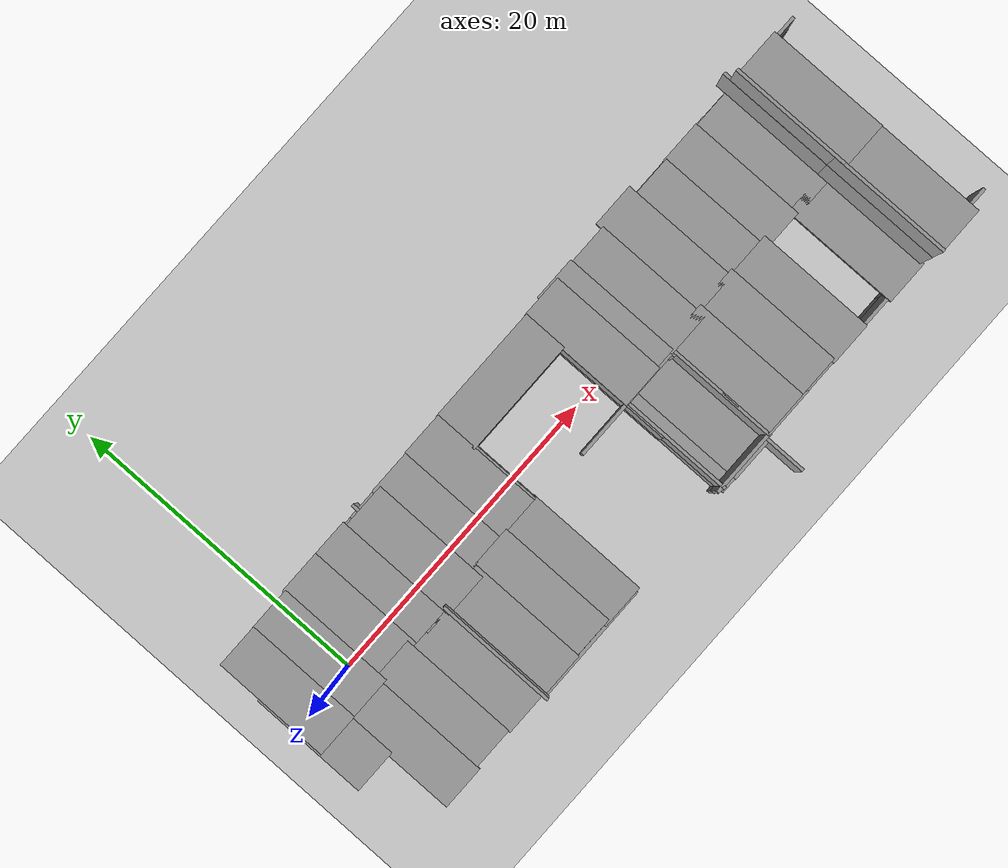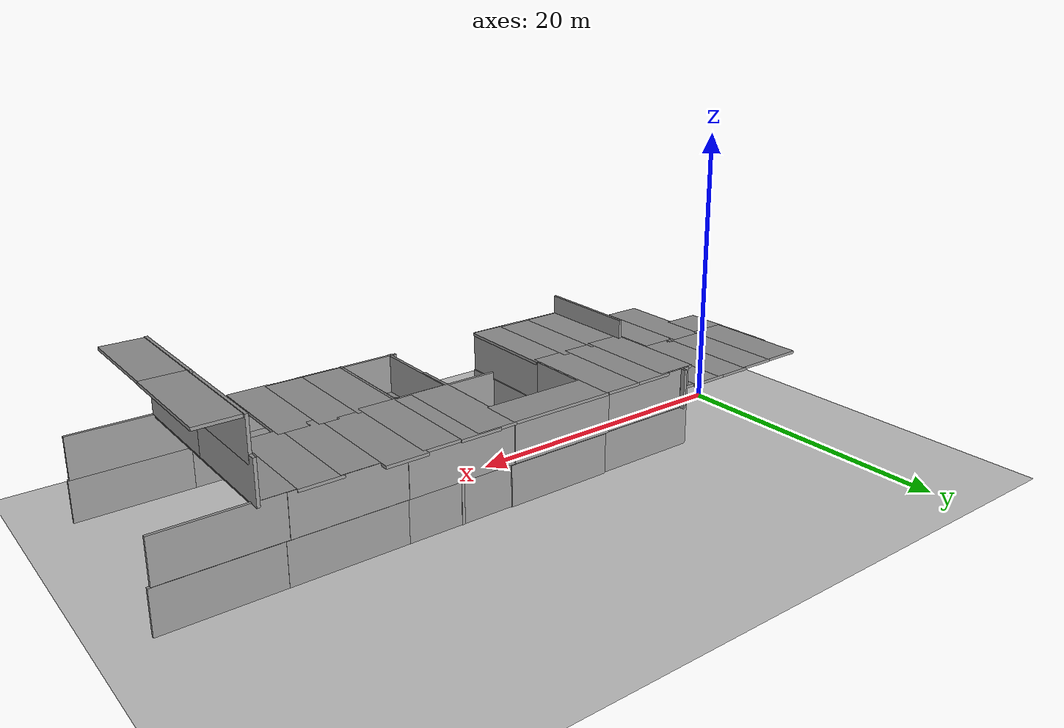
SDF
<sdf version="1.6">
 <world name="default">
  <model name="ground_plane">
   <static>1</static>
   <link name="link">
    <collision name="collision">
     <geometry><plane><normal>0 0 1</normal><size>5000 5000</size></plane></geometry>
     <surface><friction><ode><mu>100</mu><mu2>50</mu2></ode></friction></surface>
    </collision>
    <visual name="runway">
     <pose>0 0 0.005 0 -0 0</pose>
     <cast_shadows>0</cast_shadows>
     <geometry><plane><normal>0 0 1</normal><size>1829 45</size></plane></geometry>
     <material>
      <script><uri>file://media/materials/scripts/gazebo.material</uri><name>Gazebo/Runway</name></script>
     </material>
    </visual>
    <visual name="grass">
     <pose>0 0 -0.1 0 -0 0</pose>
     <cast_shadows>0</cast_shadows>
     <geometry><plane><normal>0 0 1</normal><size>5000 5000</size></plane></geometry>
     <material>
      <script><uri>file://media/materials/scripts/gazebo.material</uri><name>Gazebo/Grass</name></script>
     </material>
    </visual>
   </link>
  </model>
  <model name="grey_wall_0_clone">
   <static>1</static>
   <link name="link">
    <pose>0 0 1.4 0 -0 0</pose>
    <collision name="collision"><geometry><box><size>7.5 0.2 2.8</size></box></geometry></collision>
    <visual name="visual">
     <cast_shadows>0</cast_shadows>
     <geometry><box><size>7.5 0.2 2.8</size></box></geometry>
     <material>
      <script>
       <uri>model://grey_wall/materials/scripts</uri>
       <uri>model://grey_wall/materials/textures</uri>
       <name>vrc/grey_wall</name>
      </script>
     </material>
    </visual>
   </link>
   <pose>10.7245 5.24992 0 0 -0 0</pose>
  </model>
  <model name="grey_wall_0_clone_0">
   <static>1</static>
   <link name="link">
    <pose>0 0 1.4 0 -0 0</pose>
    <collision name="collision"><geometry><box><size>7.5 0.2 2.8</size></box></geometry></collision>
    <visual name="visual">
     <cast_shadows>0</cast_shadows>
     <geometry><box><size>7.5 0.2 2.8</size></box></geometry>
     <material>
      <script>
       <uri>model://grey_wall/materials/scripts</uri>
       <uri>model://grey_wall/materials/textures</uri>
       <name>vrc/grey_wall</name>
      </script>
     </material>
    </visual>
   </link>
   <pose>18.1379 5.35276 0 0 -0 0</pose>
  </model>
  <model name="grey_wall_0_clone_1">
   <static>1</static>
   <link name="link">
    <pose>0 0 1.4 0 -0 0</pose>
    <collision name="collision"><geometry><box><size>7.5 0.2 2.8</size></box></geometry></collision>
    <visual name="visual">
     <cast_shadows>0</cast_shadows>
     <geometry><box><size>7.5 0.2 2.8</size></box></geometry>
     <material>
      <script>
       <uri>model://grey_wall/materials/scripts</uri>
       <uri>model://grey_wall/materials/textures</uri>
       <name>vrc/grey_wall</name>
      </script>
     </material>
    </visual>
   </link>
   <pose>25.5945 5.27252 0 0 -0 0</pose>
  </model>
  <model name="grey_wall_0_clone_2">
   <static>1</static>
   <link name="link">
    <pose>0 0 1.4 0 -0 0</pose>
    <collision name="collision"><geometry><box><size>7.5 0.2 2.8</size></box></geometry></collision>
    <visual name="visual">
     <cast_shadows>0</cast_shadows>
     <geometry><box><size>7.5 0.2 2.8</size></box></geometry>
     <material>
      <script>
       <uri>model://grey_wall/materials/scripts</uri>
       <uri>model://grey_wall/materials/textures</uri>
       <name>vrc/grey_wall</name>
      </script>
     </material>
    </visual>
   </link>
   <pose>32.8671 5.27341 0 0 -0 0</pose>
  </model>
  <model name="grey_wall_0_clone_3">
   <static>1</static>
   <link name="link">
    <pose>0 0 1.4 0 -0 0</pose>
    <collision name="collision"><geometry><box><size>7.5 0.2 2.8</size></box></geometry></collision>
    <visual name="visual">
     <cast_shadows>0</cast_shadows>
     <geometry><box><size>7.5 0.2 2.8</size></box></geometry>
     <material>
      <script>
       <uri>model://grey_wall/materials/scripts</uri>
       <uri>model://grey_wall/materials/textures</uri>
       <name>vrc/grey_wall</name>
      </script>
     </material>
    </visual>
   </link>
   <pose>40.2229 5.26287 0 0 -0 0</pose>
  </model>
  <model name="grey_wall_0_clone_5">
   <static>1</static>
   <link name="link">
    <pose>0 0 1.4 0 -0 0</pose>
    <collision name="collision"><geometry><box><size>7.5 0.2 2.8</size></box></geometry></collision>
    <visual name="visual">
     <cast_shadows>0</cast_shadows>
     <geometry><box><size>7.5 0.2 2.8</size></box></geometry>
     <material>
      <script>
       <uri>model://grey_wall/materials/scripts</uri>
       <uri>model://grey_wall/materials/textures</uri>
       <name>vrc/grey_wall</name>
      </script>
     </material>
    </visual>
   </link>
   <pose>25.0989 -8.97825 0 0 -0 0</pose>
  </model>
  <model name="grey_wall_0_clone_6">
   <static>1</static>
   <link name="link">
    <pose>0 0 1.4 0 -0 0</pose>
    <collision name="collision"><geometry><box><size>7.5 0.2 2.8</size></box></geometry></collision>
    <visual name="visual">
     <cast_shadows>0</cast_shadows>
     <geometry><box><size>7.5 0.2 2.8</size></box></geometry>
     <material>
      <script>
       <uri>model://grey_wall/materials/scripts</uri>
       <uri>model://grey_wall/materials/textures</uri>
       <name>vrc/grey_wall</name>
      </script>
     </material>
    </visual>
   </link>
   <pose>32.5083 -8.96234 0 0 -0 0</pose>
  </model>
  <model name="grey_wall_0_clone_7">
   <static>1</static>
   <link name="link">
    <pose>0 0 1.4 0 -0 0</pose>
    <collision name="collision"><geometry><box><size>7.5 0.2 2.8</size></box></geometry></collision>
    <visual name="visual">
     <cast_shadows>0</cast_shadows>
     <geometry><box><size>7.5 0.2 2.8</size></box></geometry>
     <material>
      <script>
       <uri>model://grey_wall/materials/scripts</uri>
       <uri>model://grey_wall/materials/textures</uri>
       <name>vrc/grey_wall</name>
      </script>
     </material>
    </visual>
   </link>
   <pose>39.9344 -8.95946 0 0 -0 0</pose>
  </model>
  <model name="grey_wall_0_clone_10">
   <static>1</static>
   <link name="link">
    <pose>0 0 1.4 0 -0 0</pose>
    <collision name="collision"><geometry><box><size>7.5 0.2 2.8</size></box></geometry></collision>
    <visual name="visual">
     <cast_shadows>0</cast_shadows>
     <geometry><box><size>7.5 0.2 2.8</size></box></geometry>
     <material>
      <script>
       <uri>model://grey_wall/materials/scripts</uri>
       <uri>model://grey_wall/materials/textures</uri>
       <name>vrc/grey_wall</name>
      </script>
     </material>
    </visual>
   </link>
   <pose>25.0498 -8.85326 2.83061 0 -0 0</pose>
  </model>
  <model name="grey_wall_0_clone_10_clone">
   <static>1</static>
   <link name="link">
    <pose>0 0 1.4 0 -0 0</pose>
    <collision name="collision"><geometry><box><size>7.5 0.2 2.8</size></box></geometry></collision>
    <visual name="visual">
     <cast_shadows>0</cast_shadows>
     <geometry><box><size>7.5 0.2 2.8</size></box></geometry>
     <material>
      <script>
       <uri>model://grey_wall/materials/scripts</uri>
       <uri>model://grey_wall/materials/textures</uri>
       <name>vrc/grey_wall</name>
      </script>
     </material>
    </visual>
   </link>
   <pose>32.4685 -8.83738 2.83061 0 -0 0</pose>
  </model>
  <model name="grey_wall_0_clone_10_clone_clone">
   <static>1</static>
   <link name="link">
    <pose>0 0 1.4 0 -0 0</pose>
    <collision name="collision"><geometry><box><size>7.5 0.2 2.8</size></box></geometry></collision>
    <visual name="visual">
     <cast_shadows>0</cast_shadows>
     <geometry><box><size>7.5 0.2 2.8</size></box></geometry>
     <material>
      <script>
       <uri>model://grey_wall/materials/scripts</uri>
       <uri>model://grey_wall/materials/textures</uri>
       <name>vrc/grey_wall</name>
      </script>
     </material>
    </visual>
   </link>
   <pose>39.8658 -8.86209 2.83061 0 -0 0</pose>
  </model>
  <model name="grey_wall_0_clone_10_clone_clone_2">
   <static>1</static>
   <link name="link">
    <pose>0 0 1.4 0 -0 0</pose>
    <collision name="collision"><geometry><box><size>7.5 0.2 2.8</size></box></geometry></collision>
    <visual name="visual">
     <cast_shadows>0</cast_shadows>
     <geometry><box><size>7.5 0.2 2.8</size></box></geometry>
     <material>
      <script>
       <uri>model://grey_wall/materials/scripts</uri>
       <uri>model://grey_wall/materials/textures</uri>
       <name>vrc/grey_wall</name>
      </script>
     </material>
    </visual>
   </link>
   <pose>10.6982 5.25569 2.83061 0 -0 0</pose>
  </model>
  <model name="grey_wall_0_clone_10_clone_clone_3">
   <static>1</static>
   <link name="link">
    <pose>0 0 1.4 0 -0 0</pose>
    <collision name="collision"><geometry><box><size>7.5 0.2 2.8</size></box></geometry></collision>
    <visual name="visual">
     <cast_shadows>0</cast_shadows>
     <geometry><box><size>7.5 0.2 2.8</size></box></geometry>
     <material>
      <script>
       <uri>model://grey_wall/materials/scripts</uri>
       <uri>model://grey_wall/materials/textures</uri>
       <name>vrc/grey_wall</name>
      </script>
     </material>
    </visual>
   </link>
   <pose>17.8888 5.34719 2.83061 0 -0 0</pose>
  </model>
  <model name="grey_wall_0_clone_10_clone_clone_4">
   <static>1</static>
   <link name="link">
    <pose>0 0 1.4 0 -0 0</pose>
    <collision name="collision"><geometry><box><size>7.5 0.2 2.8</size></box></geometry></collision>
    <visual name="visual">
     <cast_shadows>0</cast_shadows>
     <geometry><box><size>7.5 0.2 2.8</size></box></geometry>
     <material>
      <script>
       <uri>model://grey_wall/materials/scripts</uri>
       <uri>model://grey_wall/materials/textures</uri>
       <name>vrc/grey_wall</name>
      </script>
     </material>
    </visual>
   </link>
   <pose>25.311 5.32515 2.83061 0 -0 0</pose>
  </model>
  <model name="grey_wall_0_clone_10_clone_clone_5">
   <static>1</static>
   <link name="link">
    <pose>0 0 1.4 0 -0 0</pose>
    <collision name="collision"><geometry><box><size>7.5 0.2 2.8</size></box></geometry></collision>
    <visual name="visual">
     <cast_shadows>0</cast_shadows>
     <geometry><box><size>7.5 0.2 2.8</size></box></geometry>
     <material>
      <script>
       <uri>model://grey_wall/materials/scripts</uri>
       <uri>model://grey_wall/materials/textures</uri>
       <name>vrc/grey_wall</name>
      </script>
     </material>
    </visual>
   </link>
   <pose>32.6267 5.3026 2.83061 0 -0 0</pose>
  </model>
  <model name="grey_wall_0_clone_10_clone_clone_6">
   <static>1</static>
   <link name="link">
    <pose>0 0 1.4 0 -0 0</pose>
    <collision name="collision"><geometry><box><size>7.5 0.2 2.8</size></box></geometry></collision>
    <visual name="visual">
     <cast_shadows>0</cast_shadows>
     <geometry><box><size>7.5 0.2 2.8</size></box></geometry>
     <material>
      <script>
       <uri>model://grey_wall/materials/scripts</uri>
       <uri>model://grey_wall/materials/textures</uri>
       <name>vrc/grey_wall</name>
      </script>
     </material>
    </visual>
   </link>
   <pose>40.0722 5.27757 2.83061 0 -0 0</pose>
  </model>
  <model name="grey_wall_0_clone_1_clone">
   <static>1</static>
   <link name="link">
    <pose>0 0 1.4 0 -0 0</pose>
    <collision name="collision"><geometry><box><size>7.5 0.2 2.8</size></box></geometry></collision>
    <visual name="visual">
     <cast_shadows>0</cast_shadows>
     <geometry><box><size>7.5 0.2 2.8</size></box></geometry>
     <material>
      <script>
       <uri>model://grey_wall/materials/scripts</uri>
       <uri>model://grey_wall/materials/textures</uri>
       <name>vrc/grey_wall</name>
      </script>
     </material>
    </visual>
   </link>
   <pose>14.4589 -5.28722 0 0 0 -1.5708</pose>
  </model>
  <model name="grey_wall_0_clone_10_clone_clone_3_clone">
   <static>1</static>
   <link name="link">
    <pose>0 0 1.4 0 -0 0</pose>
    <collision name="collision"><geometry><box><size>7.5 0.2 2.8</size></box></geometry></collision>
    <visual name="visual">
     <cast_shadows>0</cast_shadows>
     <geometry><box><size>7.5 0.2 2.8</size></box></geometry>
     <material>
      <script>
       <uri>model://grey_wall/materials/scripts</uri>
       <uri>model://grey_wall/materials/textures</uri>
       <name>vrc/grey_wall</name>
      </script>
     </material>
    </visual>
   </link>
   <pose>14.433 -5.27177 2.83061 0 0 -1.5708</pose>
  </model>
  <model name="grey_wall_0_clone_1_clone_clone">
   <static>1</static>
   <link name="link">
    <pose>0 0 1.4 0 -0 0</pose>
    <collision name="collision"><geometry><box><size>7.5 0.2 2.8</size></box></geometry></collision>
    <visual name="visual">
     <cast_shadows>0</cast_shadows>
     <geometry><box><size>7.5 0.2 2.8</size></box></geometry>
     <material>
      <script>
       <uri>model://grey_wall/materials/scripts</uri>
       <uri>model://grey_wall/materials/textures</uri>
       <name>vrc/grey_wall</name>
      </script>
     </material>
    </visual>
   </link>
   <pose>14.4307 1.60378 0 0 0 -1.5708</pose>
  </model>
  <model name="grey_wall_0_clone_10_clone_clone_3_clone_clone">
   <static>1</static>
   <link name="link">
    <pose>0 0 1.4 0 -0 0</pose>
    <collision name="collision"><geometry><box><size>7.5 0.2 2.8</size></box></geometry></collision>
    <visual name="visual">
     <cast_shadows>0</cast_shadows>
     <geometry><box><size>7.5 0.2 2.8</size></box></geometry>
     <material>
      <script>
       <uri>model://grey_wall/materials/scripts</uri>
       <uri>model://grey_wall/materials/textures</uri>
       <name>vrc/grey_wall</name>
      </script>
     </material>
    </visual>
   </link>
   <pose>14.3909 -0.780595 2.83061 0 0 -1.5708</pose>
  </model>
  <model name="grey_wall_0_clone_10_clone_clone_3_clone_0">
   <static>1</static>
   <link name="link">
    <pose>0 0 1.4 0 -0 0</pose>
    <collision name="collision"><geometry><box><size>7.5 0.2 2.8</size></box></geometry></collision>
    <visual name="visual">
     <cast_shadows>0</cast_shadows>
     <geometry><box><size>7.5 0.2 2.8</size></box></geometry>
     <material>
      <script>
       <uri>model://grey_wall/materials/scripts</uri>
       <uri>model://grey_wall/materials/textures</uri>
       <name>vrc/grey_wall</name>
      </script>
     </material>
    </visual>
   </link>
   <pose>18.0863 2.86625 2.83061 0 -0 0</pose>
  </model>
  <model name="grey_wall_0_clone_0_clone">
   <static>1</static>
   <link name="link">
    <pose>0 0 1.4 0 -0 0</pose>
    <collision name="collision"><geometry><box><size>7.5 0.2 2.8</size></box></geometry></collision>
    <visual name="visual">
     <cast_shadows>0</cast_shadows>
     <geometry><box><size>7.5 0.2 2.8</size></box></geometry>
     <material>
      <script>
       <uri>model://grey_wall/materials/scripts</uri>
       <uri>model://grey_wall/materials/textures</uri>
       <name>vrc/grey_wall</name>
      </script>
     </material>
    </visual>
   </link>
   <pose>18.1341 2.8231 0 0 -0 0</pose>
  </model>
  <model name="grey_wall_0_clone_10_clone_clone_3_clone_clone_clone">
   <static>1</static>
   <link name="link">
    <pose>0 0 1.4 0 -0 0</pose>
    <collision name="collision"><geometry><box><size>7.5 0.2 2.8</size></box></geometry></collision>
    <visual name="visual">
     <cast_shadows>0</cast_shadows>
     <geometry><box><size>7.5 0.2 2.8</size></box></geometry>
     <material>
      <script>
       <uri>model://grey_wall/materials/scripts</uri>
       <uri>model://grey_wall/materials/textures</uri>
       <name>vrc/grey_wall</name>
      </script>
     </material>
    </visual>
   </link>
   <pose>25.4024 1.55722 2.83061 0 0 -1.5708</pose>
  </model>
  <model name="grey_wall_0_clone_10_clone_clone_3_clone_clone_clone_0">
   <static>1</static>
   <link name="link">
    <pose>0 0 1.4 0 -0 0</pose>
    <collision name="collision"><geometry><box><size>7.5 0.2 2.8</size></box></geometry></collision>
    <visual name="visual">
     <cast_shadows>0</cast_shadows>
     <geometry><box><size>7.5 0.2 2.8</size></box></geometry>
     <material>
      <script>
       <uri>model://grey_wall/materials/scripts</uri>
       <uri>model://grey_wall/materials/textures</uri>
       <name>vrc/grey_wall</name>
      </script>
     </material>
    </visual>
   </link>
   <pose>25.5803 -2.87326 2.83061 0 0 -1.5708</pose>
  </model>
  <model name="grey_wall_0_clone_1_clone_clone_0">
   <static>1</static>
   <link name="link">
    <pose>0 0 1.4 0 -0 0</pose>
    <collision name="collision"><geometry><box><size>7.5 0.2 2.8</size></box></geometry></collision>
    <visual name="visual">
     <cast_shadows>0</cast_shadows>
     <geometry><box><size>7.5 0.2 2.8</size></box></geometry>
     <material>
      <script>
       <uri>model://grey_wall/materials/scripts</uri>
       <uri>model://grey_wall/materials/textures</uri>
       <name>vrc/grey_wall</name>
      </script>
     </material>
    </visual>
   </link>
   <pose>21.772 -0.922629 0 0 0 -1.5708</pose>
  </model>
  <model name="grey_wall_0_clone_1_clone_clone_1">
   <static>1</static>
   <link name="link">
    <pose>0 0 1.4 0 -0 0</pose>
    <collision name="collision"><geometry><box><size>7.5 0.2 2.8</size></box></geometry></collision>
    <visual name="visual">
     <cast_shadows>0</cast_shadows>
     <geometry><box><size>7.5 0.2 2.8</size></box></geometry>
     <material>
      <script>
       <uri>model://grey_wall/materials/scripts</uri>
       <uri>model://grey_wall/materials/textures</uri>
       <name>vrc/grey_wall</name>
      </script>
     </material>
    </visual>
   </link>
   <pose>21.8008 -5.49226 0 0 0 -1.5708</pose>
  </model>
  <model name="grey_wall_0_clone_10_clone_clone_3_clone_clone_clone_clone">
   <static>1</static>
   <link name="link">
    <pose>0 0 1.4 0 -0 0</pose>
    <collision name="collision"><geometry><box><size>7.5 0.2 2.8</size></box></geometry></collision>
    <visual name="visual">
     <cast_shadows>0</cast_shadows>
     <geometry><box><size>7.5 0.2 2.8</size></box></geometry>
     <material>
      <script>
       <uri>model://grey_wall/materials/scripts</uri>
       <uri>model://grey_wall/materials/textures</uri>
       <name>vrc/grey_wall</name>
      </script>
     </material>
    </visual>
   </link>
   <pose>21.6407 -0.916233 2.83061 0 0 -1.5708</pose>
  </model>
  <model name="grey_wall_0_clone_10_clone_clone_3_clone_clone_clone_clone_0">
   <static>1</static>
   <link name="link">
    <pose>0 0 1.4 0 -0 0</pose>
    <collision name="collision"><geometry><box><size>7.5 0.2 2.8</size></box></geometry></collision>
    <visual name="visual">
     <cast_shadows>0</cast_shadows>
     <geometry><box><size>7.5 0.2 2.8</size></box></geometry>
     <material>
      <script>
       <uri>model://grey_wall/materials/scripts</uri>
       <uri>model://grey_wall/materials/textures</uri>
       <name>vrc/grey_wall</name>
      </script>
     </material>
    </visual>
   </link>
   <pose>21.7402 -5.27279 2.83061 0 0 -1.5708</pose>
  </model>
  <model name="grey_wall_0_clone_1_clone_clone_0_clone">
   <static>1</static>
   <link name="link">
    <pose>0 0 1.4 0 -0 0</pose>
    <collision name="collision"><geometry><box><size>7.5 0.2 2.8</size></box></geometry></collision>
    <visual name="visual">
     <cast_shadows>0</cast_shadows>
     <geometry><box><size>7.5 0.2 2.8</size></box></geometry>
     <material>
      <script>
       <uri>model://grey_wall/materials/scripts</uri>
       <uri>model://grey_wall/materials/textures</uri>
       <name>vrc/grey_wall</name>
      </script>
     </material>
    </visual>
   </link>
   <pose>25.414 1.65261 0 0 0 -1.5708</pose>
  </model>
  <model name="grey_wall_0_clone_1_clone_clone_0_clone_0">
   <static>1</static>
   <link name="link">
    <pose>0 0 1.4 0 -0 0</pose>
    <collision name="collision"><geometry><box><size>7.5 0.2 2.8</size></box></geometry></collision>
    <visual name="visual">
     <cast_shadows>0</cast_shadows>
     <geometry><box><size>7.5 0.2 2.8</size></box></geometry>
     <material>
      <script>
       <uri>model://grey_wall/materials/scripts</uri>
       <uri>model://grey_wall/materials/textures</uri>
       <name>vrc/grey_wall</name>
      </script>
     </material>
    </visual>
   </link>
   <pose>25.6372 -8.21965 0 0 0 -1.5708</pose>
  </model>
  <model name="grey_wall_0_clone_10_clone_clone_3_clone_clone_clone_0_clone">
   <static>1</static>
   <link name="link">
    <pose>0 0 1.4 0 -0 0</pose>
    <collision name="collision"><geometry><box><size>7.5 0.2 2.8</size></box></geometry></collision>
    <visual name="visual">
     <cast_shadows>0</cast_shadows>
     <geometry><box><size>7.5 0.2 2.8</size></box></geometry>
     <material>
      <script>
       <uri>model://grey_wall/materials/scripts</uri>
       <uri>model://grey_wall/materials/textures</uri>
       <name>vrc/grey_wall</name>
      </script>
     </material>
    </visual>
   </link>
   <pose>25.562 -5.25695 2.83061 0 0 -1.5708</pose>
  </model>
  <model name="grey_wall_0_clone_10_clone_0">
   <static>1</static>
   <link name="link">
    <pose>0 0 1.4 0 -0 0</pose>
    <collision name="collision"><geometry><box><size>7.5 0.2 2.8</size></box></geometry></collision>
    <visual name="visual">
     <cast_shadows>0</cast_shadows>
     <geometry><box><size>7.5 0.2 2.8</size></box></geometry>
     <material>
      <script>
       <uri>model://grey_wall/materials/scripts</uri>
       <uri>model://grey_wall/materials/textures</uri>
       <name>vrc/grey_wall</name>
      </script>
     </material>
    </visual>
   </link>
   <pose>21.7238 -1.91976 2.83061 0 -0 0</pose>
  </model>
  <model name="grey_wall_0_clone_10_clone_0_clone">
   <static>1</static>
   <link name="link">
    <pose>0 0 1.4 0 -0 0</pose>
    <collision name="collision"><geometry><box><size>7.5 0.2 2.8</size></box></geometry></collision>
    <visual name="visual">
     <cast_shadows>0</cast_shadows>
     <geometry><box><size>7.5 0.2 2.8</size></box></geometry>
     <material>
      <script>
       <uri>model://grey_wall/materials/scripts</uri>
       <uri>model://grey_wall/materials/textures</uri>
       <name>vrc/grey_wall</name>
      </script>
     </material>
    </visual>
   </link>
   <pose>25.5163 -5.684 2.83061 1.5708 0 -1.5708</pose>
  </model>
  <model name="grey_wall_0_clone_10_clone_0_clone_clone">
   <static>1</static>
   <link name="link">
    <pose>0 0 1.4 0 -0 0</pose>
    <collision name="collision"><geometry><box><size>7.5 0.2 2.8</size></box></geometry></collision>
    <visual name="visual">
     <cast_shadows>0</cast_shadows>
     <geometry><box><size>7.5 0.2 2.8</size></box></geometry>
     <material>
      <script>
       <uri>model://grey_wall/materials/scripts</uri>
       <uri>model://grey_wall/materials/textures</uri>
       <name>vrc/grey_wall</name>
      </script>
     </material>
    </visual>
   </link>
   <pose>24.4817 -5.63211 2.8306 1.5708 0 -1.5708</pose>
  </model>
  <model name="grey_wall_0_clone_10_clone_0_clone_clone_clone">
   <static>1</static>
   <link name="link">
    <pose>0 0 1.4 0 -0 0</pose>
    <collision name="collision"><geometry><box><size>7.5 0.2 2.8</size></box></geometry></collision>
    <visual name="visual">
     <cast_shadows>0</cast_shadows>
     <geometry><box><size>7.5 0.2 2.8</size></box></geometry>
     <material>
      <script>
       <uri>model://grey_wall/materials/scripts</uri>
       <uri>model://grey_wall/materials/textures</uri>
       <name>vrc/grey_wall</name>
      </script>
     </material>
    </visual>
   </link>
   <pose>25.5834 1.89085 5.5331 1.5708 0 -1.5708</pose>
  </model>
  <model name="grey_wall_0_clone_10_clone_0_clone_clone_clone_clone">
   <static>1</static>
   <link name="link">
    <pose>0 0 1.4 0 -0 0</pose>
    <collision name="collision"><geometry><box><size>7.5 0.2 2.8</size></box></geometry></collision>
    <visual name="visual">
     <cast_shadows>0</cast_shadows>
     <geometry><box><size>7.5 0.2 2.8</size></box></geometry>
     <material>
      <script>
       <uri>model://grey_wall/materials/scripts</uri>
       <uri>model://grey_wall/materials/textures</uri>
       <name>vrc/grey_wall</name>
      </script>
     </material>
    </visual>
   </link>
   <pose>24.3486 1.77269 5.5331 1.5708 0 -1.5708</pose>
  </model>
  <model name="grey_wall_0_clone_10_clone_0_clone_clone_clone_clone_0">
   <static>1</static>
   <link name="link">
    <pose>0 0 1.4 0 -0 0</pose>
    <collision name="collision"><geometry><box><size>7.5 0.2 2.8</size></box></geometry></collision>
    <visual name="visual">
     <cast_shadows>0</cast_shadows>
     <geometry><box><size>7.5 0.2 2.8</size></box></geometry>
     <material>
      <script>
       <uri>model://grey_wall/materials/scripts</uri>
       <uri>model://grey_wall/materials/textures</uri>
       <name>vrc/grey_wall</name>
      </script>
     </material>
    </visual>
   </link>
   <pose>17.9707 2.68641 5.53311 1.5708 4e-06 3.14159</pose>
  </model>
  <model name="grey_wall_0_clone_10_clone_0_clone_clone_clone_clone_1">
   <static>1</static>
   <link name="link">
    <pose>0 0 1.4 0 -0 0</pose>
    <collision name="collision"><geometry><box><size>7.5 0.2 2.8</size></box></geometry></collision>
    <visual name="visual">
     <cast_shadows>0</cast_shadows>
     <geometry><box><size>7.5 0.2 2.8</size></box></geometry>
     <material>
      <script>
       <uri>model://grey_wall/materials/scripts</uri>
       <uri>model://grey_wall/materials/textures</uri>
       <name>vrc/grey_wall</name>
      </script>
     </material>
    </visual>
   </link>
   <pose>11.5899 1.64731 5.5331 1.5708 0 -1.5708</pose>
  </model>
  <model name="grey_wall_0_clone_10_clone_0_clone_clone_clone_clone_2">
   <static>1</static>
   <link name="link">
    <pose>0 0 1.4 0 -0 0</pose>
    <collision name="collision"><geometry><box><size>7.5 0.2 2.8</size></box></geometry></collision>
    <visual name="visual">
     <cast_shadows>0</cast_shadows>
     <geometry><box><size>7.5 0.2 2.8</size></box></geometry>
     <material>
      <script>
       <uri>model://grey_wall/materials/scripts</uri>
       <uri>model://grey_wall/materials/textures</uri>
       <name>vrc/grey_wall</name>
      </script>
     </material>
    </visual>
   </link>
   <pose>9.32002 1.47707 5.5331 1.5708 0 -1.5708</pose>
  </model>
  <model name="grey_wall_0_clone_10_clone_0_clone_clone_clone_clone_3">
   <static>1</static>
   <link name="link">
    <pose>0 0 1.4 0 -0 0</pose>
    <collision name="collision"><geometry><box><size>7.5 0.2 2.8</size></box></geometry></collision>
    <visual name="visual">
     <cast_shadows>0</cast_shadows>
     <geometry><box><size>7.5 0.2 2.8</size></box></geometry>
     <material>
      <script>
       <uri>model://grey_wall/materials/scripts</uri>
       <uri>model://grey_wall/materials/textures</uri>
       <name>vrc/grey_wall</name>
      </script>
     </material>
    </visual>
   </link>
   <pose>14.3486 1.6947 5.5331 1.5708 0 -1.5708</pose>
  </model>
  <model name="grey_wall_0_clone_10_clone_0_clone_clone_clone_clone_4">
   <static>1</static>
   <link name="link">
    <pose>0 0 1.4 0 -0 0</pose>
    <collision name="collision"><geometry><box><size>7.5 0.2 2.8</size></box></geometry></collision>
    <visual name="visual">
     <cast_shadows>0</cast_shadows>
     <geometry><box><size>7.5 0.2 2.8</size></box></geometry>
     <material>
      <script>
       <uri>model://grey_wall/materials/scripts</uri>
       <uri>model://grey_wall/materials/textures</uri>
       <name>vrc/grey_wall</name>
      </script>
     </material>
    </visual>
   </link>
   <pose>14.56 -5.34818 5.5331 1.5708 0 -1.5708</pose>
  </model>
  <model name="grey_wall_0_clone_10_clone_0_clone_clone_clone_clone_5">
   <static>1</static>
   <link name="link">
    <pose>0 0 1.4 0 -0 0</pose>
    <collision name="collision"><geometry><box><size>7.5 0.2 2.8</size></box></geometry></collision>
    <visual name="visual">
     <cast_shadows>0</cast_shadows>
     <geometry><box><size>7.5 0.2 2.8</size></box></geometry>
     <material>
      <script>
       <uri>model://grey_wall/materials/scripts</uri>
       <uri>model://grey_wall/materials/textures</uri>
       <name>vrc/grey_wall</name>
      </script>
     </material>
    </visual>
   </link>
   <pose>12.1439 -5.23018 5.5331 1.5708 0 -1.5708</pose>
  </model>
  <model name="grey_wall_0_clone_10_clone_0_clone_clone_clone_clone_6">
   <static>1</static>
   <link name="link">
    <pose>0 0 1.4 0 -0 0</pose>
    <collision name="collision"><geometry><box><size>7.5 0.2 2.8</size></box></geometry></collision>
    <visual name="visual">
     <cast_shadows>0</cast_shadows>
     <geometry><box><size>7.5 0.2 2.8</size></box></geometry>
     <material>
      <script>
       <uri>model://grey_wall/materials/scripts</uri>
       <uri>model://grey_wall/materials/textures</uri>
       <name>vrc/grey_wall</name>
      </script>
     </material>
    </visual>
   </link>
   <pose>9.58649 -5.31482 5.5331 1.5708 0 -1.5708</pose>
  </model>
  <model name="grey_wall_0_clone_10_clone_0_clone_clone_clone_clone_7">
   <static>1</static>
   <link name="link">
    <pose>0 0 1.4 0 -0 0</pose>
    <collision name="collision"><geometry><box><size>7.5 0.2 2.8</size></box></geometry></collision>
    <visual name="visual">
     <cast_shadows>0</cast_shadows>
     <geometry><box><size>7.5 0.2 2.8</size></box></geometry>
     <material>
      <script>
       <uri>model://grey_wall/materials/scripts</uri>
       <uri>model://grey_wall/materials/textures</uri>
       <name>vrc/grey_wall</name>
      </script>
     </material>
    </visual>
   </link>
   <pose>-1.21966 1.64207 4.18722 1.5708 0 -1.5708</pose>
  </model>
  <model name="grey_wall_0_clone_10_clone_0_clone_clone_clone_clone_7_clone">
   <static>1</static>
   <link name="link">
    <pose>0 0 1.4 0 -0 0</pose>
    <collision name="collision"><geometry><box><size>7.5 0.2 2.8</size></box></geometry></collision>
    <visual name="visual">
     <cast_shadows>0</cast_shadows>
     <geometry><box><size>7.5 0.2 2.8</size></box></geometry>
     <material>
      <script>
       <uri>model://grey_wall/materials/scripts</uri>
       <uri>model://grey_wall/materials/textures</uri>
       <name>vrc/grey_wall</name>
      </script>
     </material>
    </visual>
   </link>
   <pose>-1.33621 -1.21877 4.1872 1.5708 0 -1.5708</pose>
  </model>
  <model name="grey_wall_0_clone_10_clone_0_clone_clone_clone_clone_7_clone_0">
   <static>1</static>
   <link name="link">
    <pose>0 0 1.4 0 -0 0</pose>
    <collision name="collision"><geometry><box><size>7.5 0.2 2.8</size></box></geometry></collision>
    <visual name="visual">
     <cast_shadows>0</cast_shadows>
     <geometry><box><size>7.5 0.2 2.8</size></box></geometry>
     <material>
      <script>
       <uri>model://grey_wall/materials/scripts</uri>
       <uri>model://grey_wall/materials/textures</uri>
       <name>vrc/grey_wall</name>
      </script>
     </material>
    </visual>
   </link>
   <pose>1.46863 1.6641 4.1872 1.5708 0 -1.5708</pose>
  </model>
  <model name="grey_wall_0_clone_10_clone_0_clone_clone_clone_clone_7_clone_1">
   <static>1</static>
   <link name="link">
    <pose>0 0 1.4 0 -0 0</pose>
    <collision name="collision"><geometry><box><size>7.5 0.2 2.8</size></box></geometry></collision>
    <visual name="visual">
     <cast_shadows>0</cast_shadows>
     <geometry><box><size>7.5 0.2 2.8</size></box></geometry>
     <material>
      <script>
       <uri>model://grey_wall/materials/scripts</uri>
       <uri>model://grey_wall/materials/textures</uri>
       <name>vrc/grey_wall</name>
      </script>
     </material>
    </visual>
   </link>
   <pose>1.21163 -5.46045 4.1872 1.5708 0 -1.5708</pose>
  </model>
  <model name="grey_wall_0_clone_10_clone_0_clone_clone_clone_clone_7_clone_2">
   <static>1</static>
   <link name="link">
    <pose>0 0 1.4 0 -0 0</pose>
    <collision name="collision"><geometry><box><size>7.5 0.2 2.8</size></box></geometry></collision>
    <visual name="visual">
     <cast_shadows>0</cast_shadows>
     <geometry><box><size>7.5 0.2 2.8</size></box></geometry>
     <material>
      <script>
       <uri>model://grey_wall/materials/scripts</uri>
       <uri>model://grey_wall/materials/textures</uri>
       <name>vrc/grey_wall</name>
      </script>
     </material>
    </visual>
   </link>
   <pose>3.853 -5.27091 4.1872 1.5708 0 -1.5708</pose>
  </model>
  <model name="grey_wall_0_clone_10_clone_0_clone_clone_clone_clone_7_clone_3">
   <static>1</static>
   <link name="link">
    <pose>0 0 1.4 0 -0 0</pose>
    <collision name="collision"><geometry><box><size>7.5 0.2 2.8</size></box></geometry></collision>
    <visual name="visual">
     <cast_shadows>0</cast_shadows>
     <geometry><box><size>7.5 0.2 2.8</size></box></geometry>
     <material>
      <script>
       <uri>model://grey_wall/materials/scripts</uri>
       <uri>model://grey_wall/materials/textures</uri>
       <name>vrc/grey_wall</name>
      </script>
     </material>
    </visual>
   </link>
   <pose>6.61596 -5.38384 4.1872 1.5708 0 -1.5708</pose>
  </model>
  <model name="grey_wall_0_clone_10_clone_0_clone_clone_clone_clone_7_clone_4">
   <static>1</static>
   <link name="link">
    <pose>0 0 1.4 0 -0 0</pose>
    <collision name="collision"><geometry><box><size>7.5 0.2 2.8</size></box></geometry></collision>
    <visual name="visual">
     <cast_shadows>0</cast_shadows>
     <geometry><box><size>7.5 0.2 2.8</size></box></geometry>
     <material>
      <script>
       <uri>model://grey_wall/materials/scripts</uri>
       <uri>model://grey_wall/materials/textures</uri>
       <name>vrc/grey_wall</name>
      </script>
     </material>
    </visual>
   </link>
   <pose>4.09246 1.77025 4.1872 1.5708 0 -1.5708</pose>
  </model>
  <model name="grey_wall_0_clone_10_clone_0_clone_clone_clone_clone_7_clone_5">
   <static>1</static>
   <link name="link">
    <pose>0 0 1.4 0 -0 0</pose>
    <collision name="collision"><geometry><box><size>7.5 0.2 2.8</size></box></geometry></collision>
    <visual name="visual">
     <cast_shadows>0</cast_shadows>
     <geometry><box><size>7.5 0.2 2.8</size></box></geometry>
     <material>
      <script>
       <uri>model://grey_wall/materials/scripts</uri>
       <uri>model://grey_wall/materials/textures</uri>
       <name>vrc/grey_wall</name>
      </script>
     </material>
    </visual>
   </link>
   <pose>6.41355 1.77042 4.1872 1.5708 0 -1.5708</pose>
  </model>
  <model name="grey_wall_0_clone_10_clone_0_clone_clone_clone_clone_7_clone_6">
   <static>1</static>
   <link name="link">
    <pose>0 0 1.4 0 -0 0</pose>
    <collision name="collision"><geometry><box><size>7.5 0.2 2.8</size></box></geometry></collision>
    <visual name="visual">
     <cast_shadows>0</cast_shadows>
     <geometry><box><size>7.5 0.2 2.8</size></box></geometry>
     <material>
      <script>
       <uri>model://grey_wall/materials/scripts</uri>
       <uri>model://grey_wall/materials/textures</uri>
       <name>vrc/grey_wall</name>
      </script>
     </material>
    </visual>
   </link>
   <pose>7.69233 1.65748 4.1872 1.5708 0 -1.5708</pose>
  </model>
  <model name="grey_wall_0_clone_10_clone_0_clone_clone_clone_clone_7_clone_7">
   <static>1</static>
   <link name="link">
    <pose>0 0 1.4 0 -0 0</pose>
    <collision name="collision"><geometry><box><size>7.5 0.2 2.8</size></box></geometry></collision>
    <visual name="visual">
     <cast_shadows>0</cast_shadows>
     <geometry><box><size>7.5 0.2 2.8</size></box></geometry>
     <material>
      <script>
       <uri>model://grey_wall/materials/scripts</uri>
       <uri>model://grey_wall/materials/textures</uri>
       <name>vrc/grey_wall</name>
      </script>
     </material>
    </visual>
   </link>
   <pose>7.74963 -0.854378 4.1872 1.5708 0 -1.5708</pose>
  </model>
  <model name="grey_wall_0_clone_10_clone_clone_3_clone_clone_clone_clone_0_clone">
   <static>1</static>
   <link name="link">
    <pose>0 0 1.4 0 -0 0</pose>
    <collision name="collision"><geometry><box><size>7.5 0.2 2.8</size></box></geometry></collision>
    <visual name="visual">
     <cast_shadows>0</cast_shadows>
     <geometry><box><size>7.5 0.2 2.8</size></box></geometry>
     <material>
      <script>
       <uri>model://grey_wall/materials/scripts</uri>
       <uri>model://grey_wall/materials/textures</uri>
       <name>vrc/grey_wall</name>
      </script>
     </material>
    </visual>
   </link>
   <pose>7.53838 1.95282 2.83061 0 0 -1.5708</pose>
  </model>
  <model name="grey_wall_0_clone_10_clone_clone_3_clone_clone_clone_clone_0_clone_0">
   <static>1</static>
   <link name="link">
    <pose>0 0 1.4 0 -0 0</pose>
    <collision name="collision"><geometry><box><size>7.5 0.2 2.8</size></box></geometry></collision>
    <visual name="visual">
     <cast_shadows>0</cast_shadows>
     <geometry><box><size>7.5 0.2 2.8</size></box></geometry>
     <material>
      <script>
       <uri>model://grey_wall/materials/scripts</uri>
       <uri>model://grey_wall/materials/textures</uri>
       <name>vrc/grey_wall</name>
      </script>
     </material>
    </visual>
   </link>
   <pose>7.61905 -0.920727 2.83061 0 0 -1.5708</pose>
  </model>
  <model name="grey_wall_0_clone_10_clone_clone_3_clone_clone_clone_clone_0_clone_1">
   <static>1</static>
   <link name="link">
    <pose>0 0 1.4 0 -0 0</pose>
    <collision name="collision"><geometry><box><size>7.5 0.2 2.8</size></box></geometry></collision>
    <visual name="visual">
     <cast_shadows>0</cast_shadows>
     <geometry><box><size>7.5 0.2 2.8</size></box></geometry>
     <material>
      <script>
       <uri>model://grey_wall/materials/scripts</uri>
       <uri>model://grey_wall/materials/textures</uri>
       <name>vrc/grey_wall</name>
      </script>
     </material>
    </visual>
   </link>
   <pose>6.78768 -5.46024 4.18997 0 0 -1.5708</pose>
  </model>
  <model name="grey_wall_0_clone_10_clone_clone_3_clone_clone_clone_clone_0_clone_2">
   <static>1</static>
   <link name="link">
    <pose>0 0 1.4 0 -0 0</pose>
    <collision name="collision"><geometry><box><size>7.5 0.2 2.8</size></box></geometry></collision>
    <visual name="visual">
     <cast_shadows>0</cast_shadows>
     <geometry><box><size>7.5 0.2 2.8</size></box></geometry>
     <material>
      <script>
       <uri>model://grey_wall/materials/scripts</uri>
       <uri>model://grey_wall/materials/textures</uri>
       <name>vrc/grey_wall</name>
      </script>
     </material>
    </visual>
   </link>
   <pose>10.5786 -9.08447 2.83061 0 0 -4e-06</pose>
  </model>
  <model name="grey_wall_0_clone_10_clone_0_clone_clone_clone_clone_clone">
   <static>1</static>
   <link name="link">
    <pose>0 0 1.4 0 -0 0</pose>
    <collision name="collision"><geometry><box><size>7.5 0.2 2.8</size></box></geometry></collision>
    <visual name="visual">
     <cast_shadows>0</cast_shadows>
     <geometry><box><size>7.5 0.2 2.8</size></box></geometry>
     <material>
      <script>
       <uri>model://grey_wall/materials/scripts</uri>
       <uri>model://grey_wall/materials/textures</uri>
       <name>vrc/grey_wall</name>
      </script>
     </material>
    </visual>
   </link>
   <pose>28.4556 -5.08505 5.5331 1.5708 0 -1.5708</pose>
  </model>
  <model name="grey_wall_0_clone_10_clone_0_clone_clone_clone_clone_clone_0">
   <static>1</static>
   <link name="link">
    <pose>0 0 1.4 0 -0 0</pose>
    <collision name="collision"><geometry><box><size>7.5 0.2 2.8</size></box></geometry></collision>
    <visual name="visual">
     <cast_shadows>0</cast_shadows>
     <geometry><box><size>7.5 0.2 2.8</size></box></geometry>
     <material>
      <script>
       <uri>model://grey_wall/materials/scripts</uri>
       <uri>model://grey_wall/materials/textures</uri>
       <name>vrc/grey_wall</name>
      </script>
     </material>
    </visual>
   </link>
   <pose>31.0685 -5.07428 5.5331 1.5708 0 -1.5708</pose>
  </model>
  <model name="grey_wall_0_clone_10_clone_0_clone_clone_clone_clone_clone_1">
   <static>1</static>
   <link name="link">
    <pose>0 0 1.4 0 -0 0</pose>
    <collision name="collision"><geometry><box><size>7.5 0.2 2.8</size></box></geometry></collision>
    <visual name="visual">
     <cast_shadows>0</cast_shadows>
     <geometry><box><size>7.5 0.2 2.8</size></box></geometry>
     <material>
      <script>
       <uri>model://grey_wall/materials/scripts</uri>
       <uri>model://grey_wall/materials/textures</uri>
       <name>vrc/grey_wall</name>
      </script>
     </material>
    </visual>
   </link>
   <pose>33.6383 -5.23972 5.5331 1.5708 0 -1.5708</pose>
  </model>
  <model name="grey_wall_0_clone_10_clone_0_clone_clone_clone_clone_clone_2">
   <static>1</static>
   <link name="link">
    <pose>0 0 1.4 0 -0 0</pose>
    <collision name="collision"><geometry><box><size>7.5 0.2 2.8</size></box></geometry></collision>
    <visual name="visual">
     <cast_shadows>0</cast_shadows>
     <geometry><box><size>7.5 0.2 2.8</size></box></geometry>
     <material>
      <script>
       <uri>model://grey_wall/materials/scripts</uri>
       <uri>model://grey_wall/materials/textures</uri>
       <name>vrc/grey_wall</name>
      </script>
     </material>
    </visual>
   </link>
   <pose>28.1232 1.76625 5.5331 1.5708 0 -1.5708</pose>
  </model>
  <model name="grey_wall_0_clone_10_clone_0_clone_clone_clone_clone_clone_3">
   <static>1</static>
   <link name="link">
    <pose>0 0 1.4 0 -0 0</pose>
    <collision name="collision"><geometry><box><size>7.5 0.2 2.8</size></box></geometry></collision>
    <visual name="visual">
     <cast_shadows>0</cast_shadows>
     <geometry><box><size>7.5 0.2 2.8</size></box></geometry>
     <material>
      <script>
       <uri>model://grey_wall/materials/scripts</uri>
       <uri>model://grey_wall/materials/textures</uri>
       <name>vrc/grey_wall</name>
      </script>
     </material>
    </visual>
   </link>
   <pose>30.766 2.15077 5.5331 1.5708 0 -1.5708</pose>
  </model>
  <model name="grey_wall_0_clone_10_clone_0_clone_clone_clone_clone_clone_4">
   <static>1</static>
   <link name="link">
    <pose>0 0 1.4 0 -0 0</pose>
    <collision name="collision"><geometry><box><size>7.5 0.2 2.8</size></box></geometry></collision>
    <visual name="visual">
     <cast_shadows>0</cast_shadows>
     <geometry><box><size>7.5 0.2 2.8</size></box></geometry>
     <material>
      <script>
       <uri>model://grey_wall/materials/scripts</uri>
       <uri>model://grey_wall/materials/textures</uri>
       <name>vrc/grey_wall</name>
      </script>
     </material>
    </visual>
   </link>
   <pose>33.2416 1.6194 5.5331 1.5708 0 -1.5708</pose>
  </model>
  <model name="grey_wall_0_clone_10_clone_0_clone_clone_clone_clone_clone_5">
   <static>1</static>
   <link name="link">
    <pose>0 0 1.4 0 -0 0</pose>
    <collision name="collision"><geometry><box><size>7.5 0.2 2.8</size></box></geometry></collision>
    <visual name="visual">
     <cast_shadows>0</cast_shadows>
     <geometry><box><size>7.5 0.2 2.8</size></box></geometry>
     <material>
      <script>
       <uri>model://grey_wall/materials/scripts</uri>
       <uri>model://grey_wall/materials/textures</uri>
       <name>vrc/grey_wall</name>
      </script>
     </material>
    </visual>
   </link>
   <pose>35.7978 1.68551 5.5331 1.5708 0 -1.5708</pose>
  </model>
  <model name="grey_wall_0_clone_10_clone_0_clone_clone_clone_clone_clone_6">
   <static>1</static>
   <link name="link">
    <pose>0 0 1.4 0 -0 0</pose>
    <collision name="collision"><geometry><box><size>7.5 0.2 2.8</size></box></geometry></collision>
    <visual name="visual">
     <cast_shadows>0</cast_shadows>
     <geometry><box><size>7.5 0.2 2.8</size></box></geometry>
     <material>
      <script>
       <uri>model://grey_wall/materials/scripts</uri>
       <uri>model://grey_wall/materials/textures</uri>
       <name>vrc/grey_wall</name>
      </script>
     </material>
    </visual>
   </link>
   <pose>38.2747 1.60393 5.5331 1.5708 0 -1.5708</pose>
  </model>
  <model name="grey_wall_0_clone_10_clone_0_clone_clone_clone_clone_clone_6_clone">
   <static>1</static>
   <link name="link">
    <pose>0 0 1.4 0 -0 0</pose>
    <collision name="collision"><geometry><box><size>7.5 0.2 2.8</size></box></geometry></collision>
    <visual name="visual">
     <cast_shadows>0</cast_shadows>
     <geometry><box><size>7.5 0.2 2.8</size></box></geometry>
     <material>
      <script>
       <uri>model://grey_wall/materials/scripts</uri>
       <uri>model://grey_wall/materials/textures</uri>
       <name>vrc/grey_wall</name>
      </script>
     </material>
    </visual>
   </link>
   <pose>38.2685 -5.34816 5.5331 1.5708 0 -1.5708</pose>
  </model>
  <model name="grey_wall_0_clone_10_clone_clone_3_clone_clone_clone_clone_0_clone_4">
   <static>1</static>
   <link name="link">
    <pose>0 0 1.4 0 -0 0</pose>
    <collision name="collision"><geometry><box><size>7.5 0.2 2.8</size></box></geometry></collision>
    <visual name="visual">
     <cast_shadows>0</cast_shadows>
     <geometry><box><size>7.5 0.2 2.8</size></box></geometry>
     <material>
      <script>
       <uri>model://grey_wall/materials/scripts</uri>
       <uri>model://grey_wall/materials/textures</uri>
       <name>vrc/grey_wall</name>
      </script>
     </material>
    </visual>
   </link>
   <pose>38.2158 -5.17252 5.58502 0 0 -1.5708</pose>
  </model>
  <model name="grey_wall_0_clone_10_clone_clone_3_clone_clone_clone_clone_0_clone_4_clone">
   <static>1</static>
   <link name="link">
    <pose>0 0 1.4 0 -0 0</pose>
    <collision name="collision"><geometry><box><size>7.5 0.2 2.8</size></box></geometry></collision>
    <visual name="visual">
     <cast_shadows>0</cast_shadows>
     <geometry><box><size>7.5 0.2 2.8</size></box></geometry>
     <material>
      <script>
       <uri>model://grey_wall/materials/scripts</uri>
       <uri>model://grey_wall/materials/textures</uri>
       <name>vrc/grey_wall</name>
      </script>
     </material>
    </visual>
   </link>
   <pose>38.2198 2.23721 5.58502 0 0 -1.5708</pose>
  </model>
  <model name="grey_wall_0_clone_10_clone_clone_clone_clone_clone_clone">
   <static>1</static>
   <link name="link">
    <pose>0 0 1.4 0 -0 0</pose>
    <collision name="collision"><geometry><box><size>7.5 0.2 2.8</size></box></geometry></collision>
    <visual name="visual">
     <cast_shadows>0</cast_shadows>
     <geometry><box><size>7.5 0.2 2.8</size></box></geometry>
     <material>
      <script>
       <uri>model://grey_wall/materials/scripts</uri>
       <uri>model://grey_wall/materials/textures</uri>
       <name>vrc/grey_wall</name>
      </script>
     </material>
    </visual>
   </link>
   <pose>38.2245 1.73425 7.79999 0 -0 1.5708</pose>
  </model>
  <model name="grey_wall_0_clone_10_clone_clone_clone_clone_clone_clone_clone">
   <static>1</static>
   <link name="link">
    <pose>0 0 1.4 0 -0 0</pose>
    <collision name="collision"><geometry><box><size>7.5 0.2 2.8</size></box></geometry></collision>
    <visual name="visual">
     <cast_shadows>0</cast_shadows>
     <geometry><box><size>7.5 0.2 2.8</size></box></geometry>
     <material>
      <script>
       <uri>model://grey_wall/materials/scripts</uri>
       <uri>model://grey_wall/materials/textures</uri>
       <name>vrc/grey_wall</name>
      </script>
     </material>
    </visual>
   </link>
   <pose>38.2164 -5.15975 7.79999 0 -0 1.5708</pose>
  </model>
  <model name="grey_wall_0_clone_10_clone_0_clone_clone_clone_clone_clone_0_clone">
   <static>1</static>
   <link name="link">
    <pose>0 0 1.4 0 -0 0</pose>
    <collision name="collision"><geometry><box><size>7.5 0.2 2.8</size></box></geometry></collision>
    <visual name="visual">
     <cast_shadows>0</cast_shadows>
     <geometry><box><size>7.5 0.2 2.8</size></box></geometry>
     <material>
      <script>
       <uri>model://grey_wall/materials/scripts</uri>
       <uri>model://grey_wall/materials/textures</uri>
       <name>vrc/grey_wall</name>
      </script>
     </material>
    </visual>
   </link>
   <pose>41.0229 -5.13244 10.463 1.5708 0 -1.5708</pose>
  </model>
  <model name="grey_wall_0_clone_10_clone_0_clone_clone_clone_clone_clone_0_clone_clone">
   <static>1</static>
   <link name="link">
    <pose>0 0 1.4 0 -0 0</pose>
    <collision name="collision"><geometry><box><size>7.5 0.2 2.8</size></box></geometry></collision>
    <visual name="visual">
     <cast_shadows>0</cast_shadows>
     <geometry><box><size>7.5 0.2 2.8</size></box></geometry>
     <material>
      <script>
       <uri>model://grey_wall/materials/scripts</uri>
       <uri>model://grey_wall/materials/textures</uri>
       <name>vrc/grey_wall</name>
      </script>
     </material>
    </visual>
   </link>
   <pose>41.0465 1.56619 10.463 1.5708 0 -1.5708</pose>
  </model>
 </world>
</sdf>
